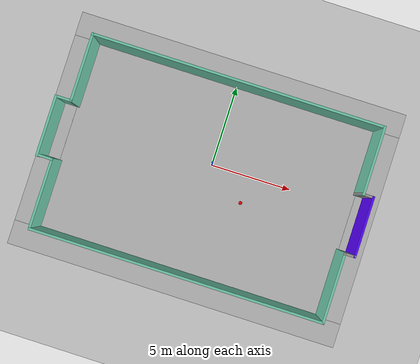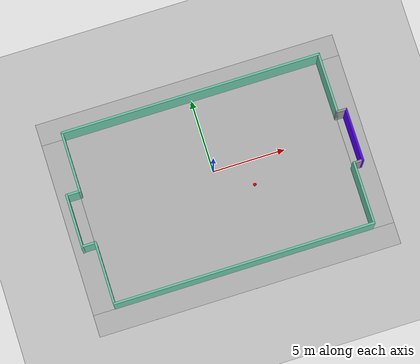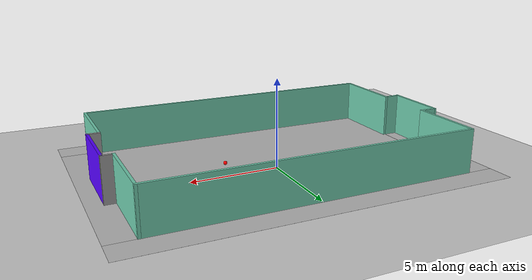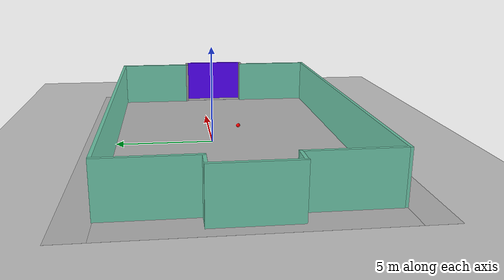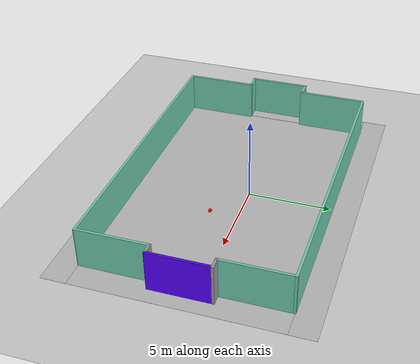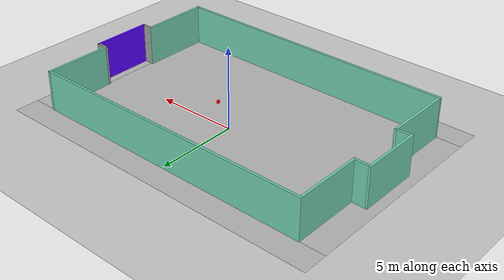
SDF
<sdf version="1.6">
 <world name="default">
  <scene><ambient>0.4 0.4 0.4 1</ambient><background>0.7 0.7 0.7 1</background><shadows>1</shadows></scene>
  <light name="sun" type="directional">
   <pose>0 0 10 0 -0 0</pose>
   <diffuse>0.8 0.8 0.8 1</diffuse>
   <specular>0.1 0.1 0.1 1</specular>
   <attenuation>
    <range>1000</range>
    <constant>0.9</constant>
    <linear>0.01</linear>
    <quadratic>0.001</quadratic>
   </attenuation>
   <direction>-0.5 0.5 -1</direction>
  </light>
  <model name="ground_plane">
   <static>1</static>
   <link name="link">
    <collision name="collision">
     <geometry><plane><normal>0 0 1</normal><size>100 100</size></plane></geometry>
     <surface><friction><ode><mu>100</mu><mu2>50</mu2></ode></friction></surface>
    </collision>
    <visual name="visual">
     <cast_shadows>0</cast_shadows>
     <geometry><plane><normal>0 0 1</normal><size>100 100</size></plane></geometry>
     <material>
      <script><uri>file://media/materials/scripts/gazebo.material</uri><name>Gazebo/Grey</name></script>
     </material>
    </visual>
   </link>
  </model>
  <physics name="default_physics" default="0" type="ode">
   <real_time_update_rate>1000</real_time_update_rate>
   <max_step_size>0.001</max_step_size>
   <real_time_factor>1</real_time_factor>
   <ode>
    <solver>
     <type>quick</type>
     <iters>150</iters>
     <precon_iters>0</precon_iters>
     <sor>1.4</sor>
     <use_dynamic_moi_rescaling>1</use_dynamic_moi_rescaling>
    </solver>
    <constraints>
     <cfm>1e-05</cfm>
     <erp>0.2</erp>
     <contact_max_correcting_vel>2000</contact_max_correcting_vel>
     <contact_surface_layer>0.01</contact_surface_layer>
    </constraints>
   </ode>
  </physics>
  <gravity>0 0 -9.8</gravity>
  <magnetic_field>6e-06 2.3e-05 -4.2e-05</magnetic_field>
  <atmosphere type="adiabatic"/>
  <spherical_coordinates>
   <surface_model>EARTH_WGS84</surface_model>
   <latitude_deg>0</latitude_deg>
   <longitude_deg>0</longitude_deg>
   <elevation>0</elevation>
   <heading_deg>0</heading_deg>
  </spherical_coordinates>
  <model name="terenu-fin_0">
   <pose>-0.169893 -0.879109 0 0 0 -3.14122</pose>
   <link name="Wall_0">
    <collision name="Wall_0_Collision">
     <geometry><box><size>18 0.15 2.5</size></box></geometry>
     <pose>0 0 1.25 0 -0 0</pose>
    </collision>
    <visual name="Wall_0_Visual">
     <pose>0 0 1.25 0 -0 0</pose>
     <geometry><box><size>18 0.15 2.5</size></box></geometry>
     <material>
      <script><uri>file://media/materials/scripts/gazebo.material</uri><name>Gazebo/Grey</name></script>
      <ambient>0.435294 0.796078 0.67451 1</ambient>
     </material>
    </visual>
    <pose>-0.157453 -5.95364 0 0 -0 3.14159</pose>
   </link>
   <link name="Wall_10">
    <collision name="Wall_10_Collision">
     <geometry><box><size>4.25 0.15 2.5</size></box></geometry>
     <pose>0 0 1.25 0 -0 0</pose>
    </collision>
    <visual name="Wall_10_Visual">
     <pose>0 0 1.25 0 -0 0</pose>
     <geometry><box><size>4.25 0.15 2.5</size></box></geometry>
     <material>
      <script><uri>file://media/materials/scripts/gazebo.material</uri><name>Gazebo/Grey</name></script>
      <ambient>0.435294 0.796078 0.67451 1</ambient>
     </material>
    </visual>
    <pose>8.76755 -3.90364 0 0 -0 1.5708</pose>
   </link>
   <link name="Wall_12">
    <collision name="Wall_12_Collision">
     <geometry><box><size>0.939165 0.15 2.5</size></box></geometry>
     <pose>0 0 1.25 0 -0 0</pose>
    </collision>
    <visual name="Wall_12_Visual">
     <pose>0 0 1.25 0 -0 0</pose>
     <geometry><box><size>0.939165 0.15 2.5</size></box></geometry>
     <material>
      <script><uri>file://media/materials/scripts/gazebo.material</uri><name>Gazebo/Grey</name></script>
      <ambient>0.435294 0.796078 0.67451 1</ambient>
     </material>
    </visual>
    <pose>9.16213 -1.85364 0 0 -0 0</pose>
   </link>
   <link name="Wall_16">
    <collision name="Wall_16_Collision">
     <geometry><box><size>0.939165 0.15 2.5</size></box></geometry>
     <pose>0 0 1.25 0 -0 0</pose>
    </collision>
    <visual name="Wall_16_Visual">
     <pose>0 0 1.25 0 -0 0</pose>
     <geometry><box><size>0.939165 0.15 2.5</size></box></geometry>
     <material>
      <script><uri>file://media/materials/scripts/gazebo.material</uri><name>Gazebo/Grey</name></script>
      <ambient>0.435294 0.796078 0.67451 1</ambient>
     </material>
    </visual>
    <pose>9.19759 1.71955 0 0 -0 3.14159</pose>
   </link>
   <link name="Wall_17">
    <collision name="Wall_17_Collision">
     <geometry><box><size>4.25 0.15 2.5</size></box></geometry>
     <pose>0 0 1.25 0 -0 0</pose>
    </collision>
    <visual name="Wall_17_Visual">
     <pose>0 0 1.25 0 -0 0</pose>
     <geometry><box><size>4.25 0.15 2.5</size></box></geometry>
     <material>
      <script><uri>file://media/materials/scripts/gazebo.material</uri><name>Gazebo/Grey</name></script>
      <ambient>0.435294 0.796078 0.67451 1</ambient>
     </material>
    </visual>
    <pose>8.77618 3.76955 0 0 -0 1.5708</pose>
   </link>
   <link name="Wall_19">
    <collision name="Wall_19_Collision">
     <geometry><box><size>18 0.15 2.5</size></box></geometry>
     <pose>0 0 1.25 0 -0 0</pose>
    </collision>
    <visual name="Wall_19_Visual">
     <pose>0 0 1.25 0 -0 0</pose>
     <geometry><box><size>18 0.15 2.5</size></box></geometry>
     <material>
      <script><uri>file://media/materials/scripts/gazebo.material</uri><name>Gazebo/Grey</name></script>
      <ambient>0.435294 0.796078 0.67451 1</ambient>
     </material>
    </visual>
    <pose>-0.157453 5.95364 0 0 -0 0</pose>
   </link>
   <link name="Wall_2">
    <collision name="Wall_2_Collision">
     <geometry><box><size>4.25 0.15 2.5</size></box></geometry>
     <pose>0 0 1.25 0 -0 0</pose>
    </collision>
    <visual name="Wall_2_Visual">
     <pose>0 0 1.25 0 -0 0</pose>
     <geometry><box><size>4.25 0.15 2.5</size></box></geometry>
     <material>
      <script><uri>file://media/materials/scripts/gazebo.material</uri><name>Gazebo/Grey</name></script>
      <ambient>0.435294 0.796078 0.67451 1</ambient>
     </material>
    </visual>
    <pose>-9.08245 -3.90364 0 0 -0 1.5708</pose>
   </link>
   <link name="Wall_23">
    <collision name="Wall_23_Collision">
     <geometry><box><size>3.75 0.15 2.5</size></box></geometry>
     <pose>0 0 1.25 0 -0 0</pose>
    </collision>
    <visual name="Wall_23_Visual">
     <pose>0 0 1.25 0 -0 0</pose>
     <geometry><box><size>3.75 0.15 2.5</size></box></geometry>
     <material>
      <script><uri>file://media/materials/scripts/gazebo.material</uri><name>Gazebo/Grey</name></script>
      <ambient>0.435294 0.796078 0.67451 1</ambient>
     </material>
    </visual>
    <pose>9.68245 -0.051017 0 0 0 -1.5708</pose>
   </link>
   <link name="Wall_3">
    <collision name="Wall_3_Collision">
     <geometry><box><size>0.75 0.15 2.5</size></box></geometry>
     <pose>0 0 1.25 0 -0 0</pose>
    </collision>
    <visual name="Wall_3_Visual">
     <pose>0 0 1.25 0 -0 0</pose>
     <geometry><box><size>0.75 0.15 2.5</size></box></geometry>
     <material>
      <script><uri>file://media/materials/scripts/gazebo.material</uri><name>Gazebo/Grey</name></script>
      <ambient>1 1 1 1</ambient>
     </material>
    </visual>
    <pose>-9.38245 -1.85364 0 0 -0 3.14159</pose>
   </link>
   <link name="Wall_5">
    <collision name="Wall_5_Collision">
     <geometry><box><size>3.75 0.15 2.5</size></box></geometry>
     <pose>0 0 1.25 0 -0 0</pose>
    </collision>
    <visual name="Wall_5_Visual">
     <pose>0 0 1.25 0 -0 0</pose>
     <geometry><box><size>3.75 0.15 2.5</size></box></geometry>
     <material>
      <script><uri>file://media/materials/scripts/gazebo.material</uri><name>Gazebo/Grey</name></script>
      <ambient>0.333333 0 1 1</ambient>
     </material>
    </visual>
    <pose>-9.68245 -0.053636 0 0 -0 1.5708</pose>
   </link>
   <link name="Wall_7">
    <collision name="Wall_7_Collision">
     <geometry><box><size>0.75 0.15 2.5</size></box></geometry>
     <pose>0 0 1.25 0 -0 0</pose>
    </collision>
    <visual name="Wall_7_Visual">
     <pose>0 0 1.25 0 -0 0</pose>
     <geometry><box><size>0.75 0.15 2.5</size></box></geometry>
     <material>
      <script><uri>file://media/materials/scripts/gazebo.material</uri><name>Gazebo/Grey</name></script>
      <ambient>1 1 1 1</ambient>
     </material>
    </visual>
    <pose>-9.38245 1.74636 0 0 -0 0</pose>
   </link>
   <link name="Wall_8">
    <collision name="Wall_8_Collision">
     <geometry><box><size>4.33045 0.15 2.5</size></box></geometry>
     <pose>0 0 1.25 0 -0 0</pose>
    </collision>
    <visual name="Wall_8_Visual">
     <pose>0 0 1.25 0 -0 0</pose>
     <geometry><box><size>4.33045 0.15 2.5</size></box></geometry>
     <material>
      <script><uri>file://media/materials/scripts/gazebo.material</uri><name>Gazebo/Grey</name></script>
      <ambient>0.435294 0.796078 0.67451 1</ambient>
     </material>
    </visual>
    <pose>-9.08245 3.83659 0 0 -0 1.5708</pose>
   </link>
   <static>1</static>
  </model>
  <model name="RoboCup15_MSL_Field">
   <static>1</static>
   <link name="chassis">
    <pose>0 0 0.01 0 -0 0</pose>
    <collision name="collision">
     <geometry><plane><normal>0 0 1</normal><size>18 12</size></plane></geometry>
     <surface><friction><ode><mu>100</mu><mu2>50</mu2></ode></friction></surface>
    </collision>
    <visual name="carpet">
     <cast_shadows>0</cast_shadows>
     <geometry><plane><normal>0 0 1</normal><size>18 12</size></plane></geometry>
     <material>
      <script>
       <uri>file://materials/scripts/</uri>
       <uri>file://materials/textures/</uri>
       <name>RoboCup/Carpet</name>
      </script>
     </material>
    </visual>
    <visual name="base1">
     <pose>0 6.75 0.01 0 -0 0</pose>
     <cast_shadows>0</cast_shadows>
     <geometry><plane><normal>0 0 1</normal><size>21 1.5</size></plane></geometry>
     <material>
      <script>
       <uri>file://materials/scripts/</uri>
       <uri>file://materials/textures/</uri>
       <name>RoboCup/FieldBorder</name>
      </script>
     </material>
    </visual>
    <visual name="base2">
     <pose>0 -6.75 0.01 0 -0 0</pose>
     <cast_shadows>0</cast_shadows>
     <geometry><plane><normal>0 0 1</normal><size>21 1.5</size></plane></geometry>
     <material>
      <script>
       <uri>file://materials/scripts/</uri>
       <uri>file://materials/textures/</uri>
       <name>RoboCup/FieldBorder</name>
      </script>
     </material>
    </visual>
    <visual name="base3">
     <pose>9.75 0 0.01 0 -0 0</pose>
     <cast_shadows>0</cast_shadows>
     <geometry><plane><normal>0 0 1</normal><size>1.5 12</size></plane></geometry>
     <material>
      <script>
       <uri>file://materials/scripts/</uri>
       <uri>file://materials/textures/</uri>
       <name>RoboCup/FieldBorder</name>
      </script>
     </material>
    </visual>
    <visual name="base4">
     <pose>-9.75 0 0.01 0 -0 0</pose>
     <cast_shadows>0</cast_shadows>
     <geometry><plane><normal>0 0 1</normal><size>1.5 12</size></plane></geometry>
     <material>
      <script>
       <uri>file://materials/scripts/</uri>
       <uri>file://materials/textures/</uri>
       <name>RoboCup/FieldBorder</name>
      </script>
     </material>
    </visual>
   </link>
   <pose>-0.021502 -0.891089 0 0 -0 0</pose>
  </model>
  <model name="unit_sphere_red">
   <link name="link">
    <inertial>
     <mass>0.01</mass>
     <inertia><ixx>0.1</ixx><ixy>0</ixy><ixz>0</ixz><iyy>0.1</iyy><iyz>0</iyz><izz>0.1</izz></inertia>
    </inertial>
    <visual name="visual">
     <geometry><sphere><radius>0.110758</radius></sphere></geometry>
     <material>
      <script><name>Gazebo/Grey</name><uri>file://media/materials/scripts/gazebo.material</uri></script>
      <ambient>1 0 0 0</ambient>
      <diffuse>1 0 0 0</diffuse>
      <specular>1 0 0 0</specular>
      <emissive>0.7 0 0 0</emissive>
      <shader type="vertex"><normal_map>__default__</normal_map></shader>
     </material>
    </visual>
    <collision name="collision">
     <geometry><sphere><radius>0.110758</radius></sphere></geometry>
     <surface>
      <friction>
       <ode><mu>0.0001</mu><mu2>0.0001</mu2><fdir1>0 0 0</fdir1><slip1>0</slip1><slip2>0</slip2></ode>
       <torsional>
        <coefficient>1</coefficient>
        <patch_radius>0.01</patch_radius>
        <surface_radius>0.5</surface_radius>
        <use_patch_radius>1</use_patch_radius>
        <ode><slip>0</slip></ode>
       </torsional>
      </friction>
      <bounce><restitution_coefficient>0</restitution_coefficient><threshold>1e+06</threshold></bounce>
      <contact>
       <collide_without_contact>0</collide_without_contact>
       <collide_without_contact_bitmask>1</collide_without_contact_bitmask>
       <collide_bitmask>1</collide_bitmask>
       <ode>
        <soft_cfm>0</soft_cfm>
        <soft_erp>0.2</soft_erp>
        <kp>1e+13</kp>
        <kd>1</kd>
        <max_vel>0.01</max_vel>
        <min_depth>0</min_depth>
       </ode>
       <bullet>
        <split_impulse>1</split_impulse>
        <split_impulse_penetration_threshold>-0.01</split_impulse_penetration_threshold>
        <soft_cfm>0</soft_cfm>
        <soft_erp>0.2</soft_erp>
        <kp>1e+13</kp>
        <kd>1</kd>
       </bullet>
      </contact>
     </surface>
    </collision>
   </link>
   <static>0</static>
   <pose>2.36774 -1.68333 0.120758 0 -0 0</pose>
  </model>
 </world>
</sdf>
